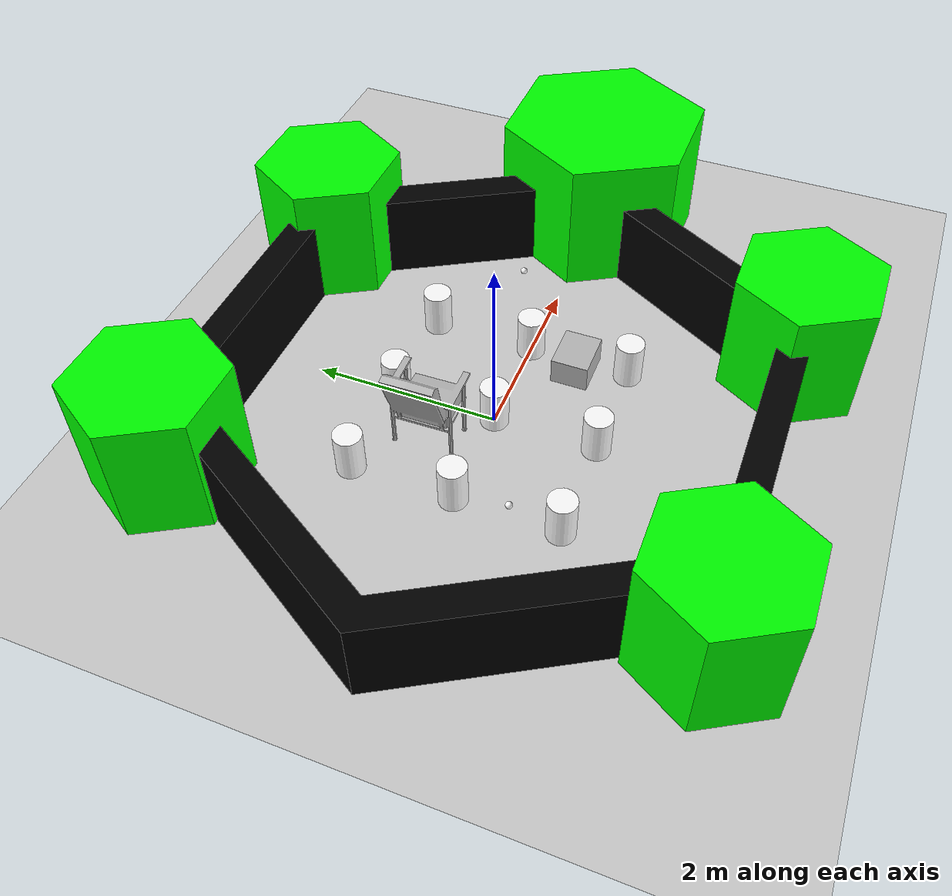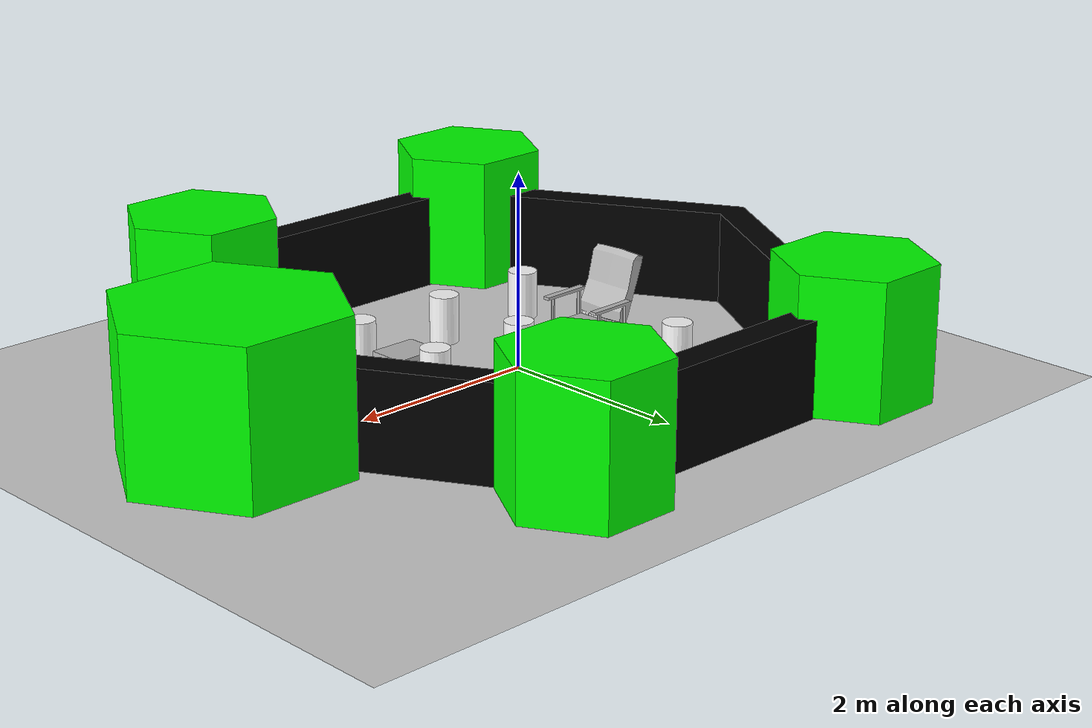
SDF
<?xml version="1.0"?>
<sdf version="1.6">
  <world name="default">

    <include>
      <uri>model://ground_plane</uri>
    </include>

    <include>
      <uri>model://sun</uri>
    </include>

    <scene>
      <shadows>false</shadows>
    </scene>

    <gui fullscreen='0'>
      <camera name='user_camera'>
        <pose frame=''>0.319654 -0.235002 9.29441 0 1.5138 0.009599</pose>
        <view_controller>orbit</view_controller>
        <projection_type>perspective</projection_type>
      </camera>
    </gui>

    <physics type="ode">
      <real_time_update_rate>1000.0</real_time_update_rate>
      <max_step_size>0.001</max_step_size>
      <real_time_factor>1</real_time_factor>
      <ode>
        <solver>
          <type>quick</type>
          <iters>150</iters>
          <precon_iters>0</precon_iters>
          <sor>1.400000</sor>
          <use_dynamic_moi_rescaling>1</use_dynamic_moi_rescaling>
        </solver>
        <constraints>
          <cfm>0.00001</cfm>
          <erp>0.2</erp>
          <contact_max_correcting_vel>2000.000000</contact_max_correcting_vel>
          <contact_surface_layer>0.01000</contact_surface_layer>
        </constraints>
      </ode>
    </physics>

    <model name="turtlebot3_world">
      <static>1</static>
      <include>
        <uri>model://turtlebot3_world</uri>
      </include>
    </model>
    <model name="cardboard_box">
        <pose>0.80 -0.80 0.149 0 0 0</pose>
        <link name="link">
          <inertial>
            <mass>2</mass>
            <inertia>
              <ixx>0.041666667</ixx>
              <ixy>0</ixy>
              <ixz>0</ixz>
              <iyy>0.056666667</iyy>
              <iyz>0</iyz>
              <izz>0.068333333</izz>
            </inertia>
          </inertial>
          <collision name="collision">
            <geometry>
              <box>
                <size>0.5 0.4 0.3</size>
              </box>
            </geometry>
            <surface>
              <friction>
                <ode>
                  <mu>1.0</mu>
                  <mu2>1.0</mu2>
                </ode>
              </friction>
              <contact>
                <ode>
                  <kp>10000000.0</kp>
                  <kd>1.0</kd>
                  <min_depth>0.001</min_depth>
                  <max_vel>0.1</max_vel>
                </ode>
              </contact>
            </surface>
          </collision>
          <visual name="visual">
            <pose>0.20 0.25 -0.15 0 0 0</pose>
            <geometry>
              <mesh>
                <uri>model://cardboard_box/meshes/cardboard_box.dae</uri>
                <scale>1.25931896 1.007455168 0.755591376</scale>
              </mesh>
            </geometry>
          </visual>
        </link>
      </model>

    <model name="VisitorChair">
   <static>true</static>
    <link name="body">
      <pose>-0.430634 0.545444 0.0 0.0 0.0 1.592900</pose>

      <visual name="visual">
        <geometry>
          <mesh>
            <uri>model://VisitorChair/meshes/VisitorChair.obj</uri>
          </mesh>
        </geometry>
      </visual>

      <collision name="collision">
        <geometry>
          <mesh>
            <uri>model://VisitorChair/meshes/VisitorChair_Col.obj</uri>
          </mesh>
        </geometry>
      </collision>

    </link>
  </model>

      <include>
        <uri>model://cricket_ball</uri>
        <name>cricket_ball</name>
        <pose>2.291700 0.52000 0.000000 0 0 0</pose>
      </include>

       <include>
        <uri>model://cricket_ball</uri>
        <name>cricket_ball1</name>
        <pose>-0.9954 -0.5377 -0.001014 0 0 0</pose>
      </include>
      </world>
</sdf>

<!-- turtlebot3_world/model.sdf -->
<sdf version="1.5">
    <model name='ros_symbol'>
      <static>1</static>
      <link name='symbol'>

        <collision name='one_one'>
          <pose>-1.1 -1.1 0.25 0 0 0</pose>
          <geometry>
            <cylinder>
              <radius>0.15</radius>
              <length>0.5</length>
            </cylinder>
          </geometry>
          <max_contacts>10</max_contacts>
          <surface>
            <bounce/>
            <friction>
              <ode/>
            </friction>
            <contact>
              <ode/>
            </contact>
          </surface>
        </collision>

        <visual name='one_one'>
          <pose>-1.1 -1.1 0.25 0 0 0</pose>
          <geometry>
            <cylinder>
              <radius>0.15</radius>
              <length>0.5</length>
            </cylinder>
          </geometry>
          <material>
            <ambient>1 1 1 1</ambient>
            <diffuse>1 1 1 1</diffuse>
            <specular>0.2 0.2 0.2 1</specular>
            <emissive>0 0 0 1</emissive>
          </material>
        </visual>

        <collision name='one_two'>
          <pose>-1.1 0 0.25 0 0 0</pose>
          <geometry>
            <cylinder>
              <radius>0.15</radius>
              <length>0.5</length>
            </cylinder>
          </geometry>
          <max_contacts>10</max_contacts>
          <surface>
            <bounce/>
            <friction>
              <ode/>
            </friction>
            <contact>
              <ode/>
            </contact>
          </surface>
        </collision>

        <visual name='one_two'>
          <pose>-1.1 0 0.25 0 0 0</pose>
          <geometry>
            <cylinder>
              <radius>0.15</radius>
              <length>0.5</length>
            </cylinder>
          </geometry>
          <material>
            <ambient>1 1 1 1</ambient>
            <diffuse>1 1 1 1</diffuse>
            <specular>0.2 0.2 0.2 1</specular>
            <emissive>0 0 0 1</emissive>
          </material>
        </visual>

        <collision name='one_three'>
          <pose>-1.1 1.1 0.25 0 0 0</pose>
          <geometry>
            <cylinder>
              <radius>0.15</radius>
              <length>0.5</length>
            </cylinder>
          </geometry>
          <max_contacts>10</max_contacts>
          <surface>
            <bounce/>
            <friction>
              <ode/>
            </friction>
            <contact>
              <ode/>
            </contact>
          </surface>
        </collision>

        <visual name='one_three'>
          <pose>-1.1 1.1 0.25 0 0 0</pose>
          <geometry>
            <cylinder>
              <radius>0.15</radius>
              <length>0.5</length>
            </cylinder>
          </geometry>
          <material>
            <ambient>1 1 1 1</ambient>
            <diffuse>1 1 1 1</diffuse>
            <specular>0.2 0.2 0.2 1</specular>
            <emissive>0 0 0 1</emissive>
          </material>
        </visual>

        <collision name='two_one'>
          <pose>0 -1.1 0.25 0 0 0</pose>
          <geometry>
            <cylinder>
              <radius>0.15</radius>
              <length>0.5</length>
            </cylinder>
          </geometry>
          <max_contacts>10</max_contacts>
          <surface>
            <bounce/>
            <friction>
              <ode/>
            </friction>
            <contact>
              <ode/>
            </contact>
          </surface>
        </collision>

        <visual name='two_one'>
          <pose>0 -1.1 0.25 0 0 0</pose>
          <geometry>
            <cylinder>
              <radius>0.15</radius>
              <length>0.5</length>
            </cylinder>
          </geometry>
          <material>
            <ambient>1 1 1 1</ambient>
            <diffuse>1 1 1 1</diffuse>
            <specular>0.2 0.2 0.2 1</specular>
            <emissive>0 0 0 1</emissive>
          </material>
        </visual>

        <collision name='two_two'>
          <pose>0 0 0.25 0 0 0</pose>
          <geometry>
            <cylinder>
              <radius>0.15</radius>
              <length>0.5</length>
            </cylinder>
          </geometry>
          <max_contacts>10</max_contacts>
          <surface>
            <bounce/>
            <friction>
              <ode/>
            </friction>
            <contact>
              <ode/>
            </contact>
          </surface>
        </collision>

        <visual name='two_two'>
          <pose>0 0 0.25 0 0 0</pose>
          <geometry>
            <cylinder>
              <radius>0.15</radius>
              <length>0.5</length>
            </cylinder>
          </geometry>
          <material>
            <ambient>1 1 1 1</ambient>
            <diffuse>1 1 1 1</diffuse>
            <specular>0.2 0.2 0.2 1</specular>
            <emissive>0 0 0 1</emissive>
          </material>
        </visual>

        <collision name='two_three'>
          <pose>0 1.1 0.25 0 0 0</pose>
          <geometry>
            <cylinder>
              <radius>0.15</radius>
              <length>0.5</length>
            </cylinder>
          </geometry>
          <max_contacts>10</max_contacts>
          <surface>
            <bounce/>
            <friction>
              <ode/>
            </friction>
            <contact>
              <ode/>
            </contact>
          </surface>
        </collision>

        <visual name='two_three'>
          <pose>0 1.1 0.25 0 0 0</pose>
          <geometry>
            <cylinder>
              <radius>0.15</radius>
              <length>0.5</length>
            </cylinder>
          </geometry>
          <material>
            <ambient>1 1 1 1</ambient>
            <diffuse>1 1 1 1</diffuse>
            <specular>0.2 0.2 0.2 1</specular>
            <emissive>0 0 0 1</emissive>
          </material>
        </visual>

        <collision name='three_one'>
          <pose>1.1 -1.1 0.25 0 0 0</pose>
          <geometry>
            <cylinder>
              <radius>0.15</radius>
              <length>0.5</length>
            </cylinder>
          </geometry>
          <max_contacts>10</max_contacts>
          <surface>
            <bounce/>
            <friction>
              <ode/>
            </friction>
            <contact>
              <ode/>
            </contact>
          </surface>
        </collision>

        <visual name='three_one'>
          <pose>1.1 -1.1 0.25 0 0 0</pose>
          <geometry>
            <cylinder>
              <radius>0.15</radius>
              <length>0.5</length>
            </cylinder>
          </geometry>
          <material>
            <ambient>1 1 1 1</ambient>
            <diffuse>1 1 1 1</diffuse>
            <specular>0.2 0.2 0.2 1</specular>
            <emissive>0 0 0 1</emissive>
          </material>
        </visual>

        <collision name='three_two'>
          <pose>1.1 0 0.25 0 0 0</pose>
          <geometry>
            <cylinder>
              <radius>0.15</radius>
              <length>0.5</length>
            </cylinder>
          </geometry>
          <max_contacts>10</max_contacts>
          <surface>
            <bounce/>
            <friction>
              <ode/>
            </friction>
            <contact>
              <ode/>
            </contact>
          </surface>
        </collision>

        <visual name='three_two'>
          <pose>1.1 0 0.25 0 0 0</pose>
          <geometry>
            <cylinder>
              <radius>0.15</radius>
              <length>0.5</length>
            </cylinder>
          </geometry>
          <material>
            <ambient>1 1 1 1</ambient>
            <diffuse>1 1 1 1</diffuse>
            <specular>0.2 0.2 0.2 1</specular>
            <emissive>0 0 0 1</emissive>
          </material>
        </visual>

        <collision name='three_three'>
          <pose>1.1 1.1 0.25 0 0 0</pose>
          <geometry>
            <cylinder>
              <radius>0.15</radius>
              <length>0.5</length>
            </cylinder>
          </geometry>
          <max_contacts>10</max_contacts>
          <surface>
            <bounce/>
            <friction>
              <ode/>
            </friction>
            <contact>
              <ode/>
            </contact>
          </surface>
        </collision>

        <visual name='three_three'>
          <pose>1.1 1.1 0.25 0 0 0</pose>
          <geometry>
            <cylinder>
              <radius>0.15</radius>
              <length>0.5</length>
            </cylinder>
          </geometry>
          <material>
            <ambient>1 1 1 1</ambient>
            <diffuse>1 1 1 1</diffuse>
            <specular>0.2 0.2 0.2 1</specular>
            <emissive>0 0 0 1</emissive>
          </material>
        </visual>

        <!-- Draw Hexagon -->
        <collision name='head'>
          <pose>3.5 0 -0.5 0 0 0</pose>
          <geometry>
            <mesh>
              <uri>model://turtlebot3_world/meshes/hexagon.dae</uri>
              <scale>0.8 0.8 0.8</scale>
            </mesh>
          </geometry>
          <max_contacts>10</max_contacts>
          <surface>
            <bounce/>
            <friction>
              <ode/>
            </friction>
            <contact>
              <ode/>
            </contact>
          </surface>
        </collision>

        <visual name='head'>
          <pose>3.5 0 -0.5 0 0 0</pose>
          <geometry>
            <mesh>
              <uri>model://turtlebot3_world/meshes/hexagon.dae</uri>
              <scale>0.8 0.8 0.8</scale>
            </mesh>
          </geometry>
          <material>
            <ambient>0 1 0 1</ambient>
            <diffuse>0 1 0 1</diffuse>
            <specular>0.2 0.2 0.2 1</specular>
            <emissive>0 0 0 1</emissive>
          </material>
        </visual>

        <collision name='left_hand'>
          <pose>1.8 2.7 0 0 0 0</pose>
          <geometry>
            <mesh>
              <uri>model://turtlebot3_world/meshes/hexagon.dae</uri>
              <scale>0.55 0.55 0.55</scale>
            </mesh>
          </geometry>
          <max_contacts>10</max_contacts>
          <surface>
            <bounce/>
            <friction>
              <ode/>
            </friction>
            <contact>
              <ode/>
            </contact>
          </surface>
        </collision>

        <visual name='left_hand'>
          <pose>1.8 2.7 0 0 0 0</pose>
          <geometry>
            <mesh>
              <uri>model://turtlebot3_world/meshes/hexagon.dae</uri>
              <scale>0.55 0.55 0.55</scale>
            </mesh>
          </geometry>
          <material>
            <ambient>0 1 0 1</ambient>
            <diffuse>0 1 0 1</diffuse>
            <specular>0.2 0.2 0.2 1</specular>
            <emissive>0 0 0 1</emissive>
          </material>
        </visual>

        <collision name='right_hand'>
          <pose>1.8 -2.7 0 0 0 0</pose>
          <geometry>
            <mesh>
              <uri>model://turtlebot3_world/meshes/hexagon.dae</uri>
              <scale>0.55 0.55 0.55</scale>
            </mesh>
          </geometry>
          <max_contacts>10</max_contacts>
          <surface>
            <bounce/>
            <friction>
              <ode/>
            </friction>
            <contact>
              <ode/>
            </contact>
          </surface>
        </collision>

        <visual name='right_hand'>
          <pose>1.8 -2.7 0 0 0 0</pose>
          <geometry>
            <mesh>
              <uri>model://turtlebot3_world/meshes/hexagon.dae</uri>
              <scale>0.55 0.55 0.55</scale>
            </mesh>
          </geometry>
          <material>
            <ambient>0 1 0 1</ambient>
            <diffuse>0 1 0 1</diffuse>
            <specular>0.2 0.2 0.2 1</specular>
            <emissive>0 0 0 1</emissive>
          </material>
        </visual>

        <collision name='left_foot'>
          <pose>-1.8 2.7 0 0 0 0</pose>
          <geometry>
            <mesh>
              <uri>model://turtlebot3_world/meshes/hexagon.dae</uri>
              <scale>0.55 0.55 0.55</scale>
            </mesh>
          </geometry>
          <max_contacts>10</max_contacts>
          <surface>
            <bounce/>
            <friction>
              <ode/>
            </friction>
            <contact>
              <ode/>
            </contact>
          </surface>
        </collision>

        <visual name='left_foot'>
          <pose>-1.8 2.7 0 0 0 0</pose>
          <geometry>
            <mesh>
              <uri>model://turtlebot3_world/meshes/hexagon.dae</uri>
              <scale>0.55 0.55 0.55</scale>
            </mesh>
          </geometry>
          <material>
            <ambient>0 1 0 1</ambient>
            <diffuse>0 1 0 1</diffuse>
            <specular>0.2 0.2 0.2 1</specular>
            <emissive>0 0 0 1</emissive>
          </material>
        </visual>

        <collision name='right_foot'>
          <pose>-1.8 -2.7 0 0 0 0</pose>
          <geometry>
            <mesh>
              <uri>model://turtlebot3_world/meshes/hexagon.dae</uri>
              <scale>0.55 0.55 0.55</scale>
            </mesh>
          </geometry>
          <max_contacts>10</max_contacts>
          <surface>
            <bounce/>
            <friction>
              <ode/>
            </friction>
            <contact>
              <ode/>
            </contact>
          </surface>
        </collision>

        <visual name='right_foot'>
          <pose>-1.8 -2.7 0 0 0 0</pose>
          <geometry>
            <mesh>
              <uri>model://turtlebot3_world/meshes/hexagon.dae</uri>
              <scale>0.55 0.55 0.55</scale>
            </mesh>
          </geometry>
          <material>
            <ambient>0 1 0 1</ambient>
            <diffuse>0 1 0 1</diffuse>
            <specular>0.2 0.2 0.2 1</specular>
            <emissive>0 0 0 1</emissive>
          </material>
        </visual>

        <!-- Draw Wall -->
      <collision name='body'>
        <pose>0 0 -0.3 0 0 -1.5708</pose>
        <geometry>
          <mesh>
            <uri>model://turtlebot3_world/meshes/wall.dae</uri>
            <scale>0.25 0.25 0.25</scale>
          </mesh>
        </geometry>
        <max_contacts>10</max_contacts>
        <surface>
          <bounce/>
          <friction>
            <ode/>
          </friction>
          <contact>
            <ode/>
          </contact>
        </surface>
      </collision>

      <visual name='body'>
        <pose>0 0 -0.3 0 0 -1.5708</pose>
        <geometry>
          <mesh>
            <uri>model://turtlebot3_world/meshes/wall.dae</uri>
            <scale>0.25 0.25 0.25</scale>
          </mesh>
        </geometry>
        <material>
          <ambient>0 0 0 1</ambient>
          <diffuse>0 0 0 1</diffuse>
          <specular>0 0 0 1</specular>
          <emissive>0 0 0 1</emissive>
        </material>
      </visual>
    </link>
  </model>
</sdf>

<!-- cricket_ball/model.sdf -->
<sdf version="1.5">
  <model name="cricket_ball">
    <link name="link">
      <pose>0 0 0.0375 0 0 0</pose>
      <inertial>
        <mass>0.1467</mass>
        <inertia>
          <ixx>8.251875e-05</ixx>
          <ixy>0</ixy>
          <ixz>0</ixz>
          <iyy>8.251875e-05</iyy>
          <iyz>0</iyz>
          <izz>8.251875e-05</izz>
        </inertia>
      </inertial>

      <collision name="collision">
        <geometry>
          <sphere>
            <radius>0.0375</radius>
          </sphere>
        </geometry>
        <surface>
          <contact>
            <!-- Red Pine coefficients for longitudinal axis of the wood
                 according to:
                 http://www.fpl.fs.fed.us/documnts/fplgtr/fplgtr113/ch04.pdf -->
            <poissons_ratio>0.347</poissons_ratio>
            <elastic_modulus>8.8e+09</elastic_modulus>
            <ode>
              <kp>100000</kp>
              <kd>100</kd>
              <max_vel>100.0</max_vel>
              <min_depth>0.001</min_depth>
            </ode>
          </contact>
          <friction>
            <torsional>
              <coefficient>1.0</coefficient>
              <use_patch_radius>0</use_patch_radius>
              <surface_radius>0.01</surface_radius>
            </torsional>
          </friction>
        </surface>
      </collision>

      <visual name="visual">
        <geometry>
          <sphere>
            <radius>0.0375</radius>
          </sphere>
        </geometry>
        <material><diffuse>1 1 1 1</diffuse><specular>0.1 0.1 0.1 1</specular></material>
      </visual>

      <!-- approximate rolling friction -->
      <velocity_decay>
        <linear>0.00</linear>
        <angular>0.005</angular>
      </velocity_decay>
    </link>
  </model>
</sdf>
